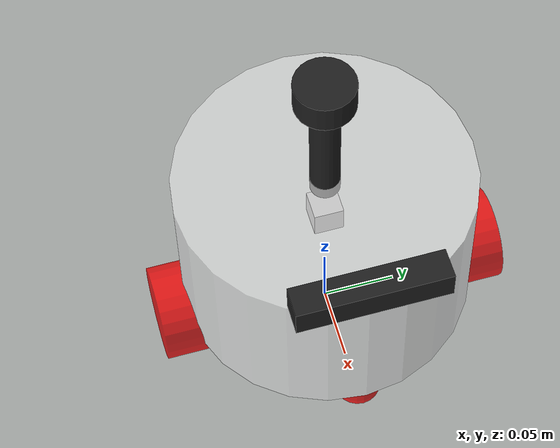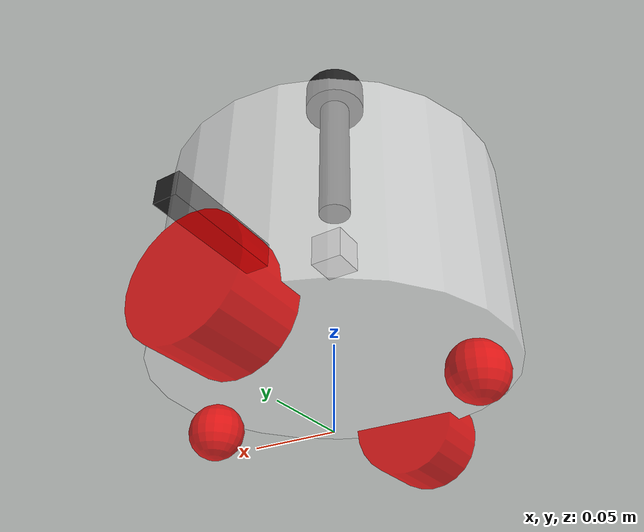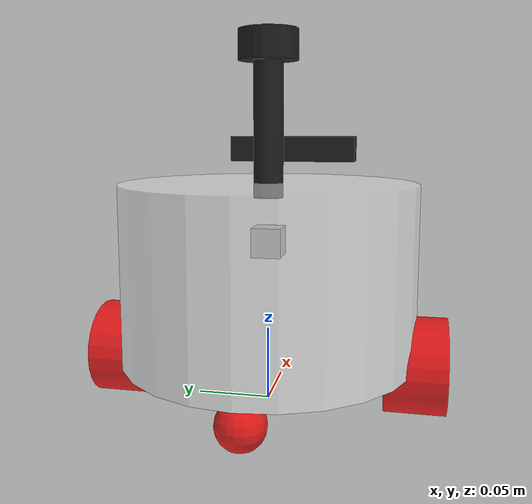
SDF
<sdf version='1.11'>
  <model name='robot_presatation'>
    <link name='base_footprint'>
      <inertial>
        <pose>0.0072992700729927031 0 0.10618248175182481 0 0 0</pose>
        <mass>1.3700000000000001</mass>
        <inertia>
          <ixx>0.0075142943795620384</ixx>
          <ixy>0</ixy>
          <ixz>-0.00064817518248175146</ixz>
          <iyy>0.0090013016788321135</iyy>
          <iyz>0</iyz>
          <izz>0.006687747299270074</izz>
        </inertia>
      </inertial>
      <collision name='base_footprint_fixed_joint_lump__base_link_collision'>
        <pose>0 0 0.090999999999999998 0 0 0</pose>
        <geometry>
          <cylinder>
            <length>0.12</length>
            <radius>0.10000000000000001</radius>
          </cylinder>
        </geometry>
      </collision>
      <collision name='base_footprint_fixed_joint_lump__back_caster_link_collision_1'>
        <pose>-0.080000000000000002 0 0.014999999999999999 0 0 0</pose>
        <geometry>
          <sphere>
            <radius>0.016</radius>
          </sphere>
        </geometry>
        <surface>
          <contact>
            <ode>
              <kp>1000000000</kp>
              <kd>1</kd>
            </ode>
          </contact>
          <friction>
            <ode>
              <mu>0</mu>
              <mu2>0</mu2>
            </ode>
          </friction>
        </surface>
      </collision>
      <collision name='base_footprint_fixed_joint_lump__camera_link_collision_2'>
        <pose>0.10000000000000001 0 0.17100000000000001 0 0 0</pose>
        <geometry>
          <box>
            <size>0.02 0.10000000000000001 0.02</size>
          </box>
        </geometry>
        <surface>
          <contact>
            <ode/>
          </contact>
          <friction>
            <ode/>
          </friction>
        </surface>
      </collision>
      <collision name='base_footprint_fixed_joint_lump__front_caster_link_collision_3'>
        <pose>0.080000000000000002 0 0.014999999999999999 0 0 0</pose>
        <geometry>
          <sphere>
            <radius>0.016</radius>
          </sphere>
        </geometry>
        <surface>
          <contact>
            <ode>
              <kp>1000000000</kp>
              <kd>1</kd>
            </ode>
          </contact>
          <friction>
            <ode>
              <mu>0</mu>
              <mu2>0</mu2>
            </ode>
          </friction>
        </surface>
      </collision>
      <collision name='base_footprint_fixed_joint_lump__imu_link_collision_4'>
        <pose>0 0 0.111 0 0 0</pose>
        <geometry>
          <box>
            <size>0.02 0.02 0.02</size>
          </box>
        </geometry>
        <surface>
          <contact>
            <ode/>
          </contact>
          <friction>
            <ode/>
          </friction>
        </surface>
      </collision>
      <collision name='base_footprint_fixed_joint_lump__laser_cylinder_link_collision_5'>
        <pose>0 0 0.191 0 0 0</pose>
        <geometry>
          <cylinder>
            <length>0.10000000000000001</length>
            <radius>0.01</radius>
          </cylinder>
        </geometry>
        <surface>
          <contact>
            <ode/>
          </contact>
          <friction>
            <ode/>
          </friction>
        </surface>
      </collision>
      <collision name='base_footprint_fixed_joint_lump__laser_link_collision_6'>
        <pose>0 0 0.24099999999999999 0 0 0</pose>
        <geometry>
          <cylinder>
            <length>0.02</length>
            <radius>0.02</radius>
          </cylinder>
        </geometry>
        <surface>
          <contact>
            <ode/>
          </contact>
          <friction>
            <ode/>
          </friction>
        </surface>
      </collision>
      <visual name='base_footprint_fixed_joint_lump__base_link_visual'>
        <pose>0 0 0.090999999999999998 0 0 0</pose>
        <geometry>
          <cylinder>
            <length>0.12</length>
            <radius>0.10000000000000001</radius>
          </cylinder>
        </geometry>
        <material>
          <diffuse>1 1 1 0.5</diffuse>
          <ambient>1 1 1 0.5</ambient>
        </material>
      </visual>
      <visual name='base_footprint_fixed_joint_lump__back_caster_link_visual_1'>
        <pose>-0.080000000000000002 0 0.014999999999999999 0 0 0</pose>
        <geometry>
          <sphere>
            <radius>0.016</radius>
          </sphere>
        </geometry>
        <material>
          <diffuse>1 0 0 0.800000012</diffuse>
          <ambient>1 0 0 0.800000012</ambient>
        </material>
      </visual>
      <visual name='base_footprint_fixed_joint_lump__camera_link_visual_2'>
        <pose>0.10000000000000001 0 0.17100000000000001 0 0 0</pose>
        <geometry>
          <box>
            <size>0.02 0.10000000000000001 0.02</size>
          </box>
        </geometry>
        <material>
          <script>
            <name>Gazebo/Black</name>
            <uri>file://media/materials/scripts/gazebo.material</uri>
          </script>
          <diffuse>0 0 0 0.5</diffuse>
          <ambient>0 0 0 0.5</ambient>
        </material>
      </visual>
      <visual name='base_footprint_fixed_joint_lump__front_caster_link_visual_3'>
        <pose>0.080000000000000002 0 0.014999999999999999 0 0 0</pose>
        <geometry>
          <sphere>
            <radius>0.016</radius>
          </sphere>
        </geometry>
        <material>
          <diffuse>1 0 0 0.800000012</diffuse>
          <ambient>1 0 0 0.800000012</ambient>
        </material>
      </visual>
      <visual name='base_footprint_fixed_joint_lump__imu_link_visual_4'>
        <pose>0 0 0.111 0 0 0</pose>
        <geometry>
          <box>
            <size>0.02 0.02 0.02</size>
          </box>
        </geometry>
        <material>
          <script>
            <name>Gazebo/Grey</name>
            <uri>file://media/materials/scripts/gazebo.material</uri>
          </script>
          <diffuse>0.37500003 0.37500003 0.37500003 1</diffuse>
          <ambient>0.37500003 0.37500003 0.37500003 1</ambient>
        </material>
      </visual>
      <visual name='base_footprint_fixed_joint_lump__laser_cylinder_link_visual_5'>
        <pose>0 0 0.191 0 0 0</pose>
        <geometry>
          <cylinder>
            <length>0.10000000000000001</length>
            <radius>0.01</radius>
          </cylinder>
        </geometry>
        <material>
          <script>
            <name>Gazebo/Black</name>
            <uri>file://media/materials/scripts/gazebo.material</uri>
          </script>
          <diffuse>0 0 0 0.5</diffuse>
          <ambient>0 0 0 0.5</ambient>
        </material>
      </visual>
      <visual name='base_footprint_fixed_joint_lump__laser_link_visual_6'>
        <pose>0 0 0.24099999999999999 0 0 0</pose>
        <geometry>
          <cylinder>
            <length>0.02</length>
            <radius>0.02</radius>
          </cylinder>
        </geometry>
        <material>
          <script>
            <name>Gazebo/Black</name>
            <uri>file://media/materials/scripts/gazebo.material</uri>
          </script>
          <diffuse>0 0 0 0.5</diffuse>
          <ambient>0 0 0 0.5</ambient>
        </material>
      </visual>
      <sensor name='laser_sensor' type='gpu_lidar'>
        <topic>/scan</topic>
        <always_on>true</always_on>
        <update_rate>10</update_rate>
        <visualize>true</visualize>
        <lidar>
          <scan>
            <horizontal>
              <samples>640</samples>
              <resolution>1</resolution>
              <min_angle>0</min_angle>
              <max_angle>6.2800000000000002</max_angle>
            </horizontal>
            <vertical>
              <samples>1</samples>
              <resolution>0.01</resolution>
              <min_angle>0</min_angle>
              <max_angle>0</max_angle>
            </vertical>
          </scan>
          <range>
            <min>0.080000000000000002</min>
            <max>10</max>
            <resolution>0.01</resolution>
          </range>
        </lidar>
        <pose>0 0 0.24099999999999999 0 0 0</pose>
      </sensor>
    </link>
    <joint name='left_wheel_joint' type='revolute'>
      <pose relative_to='base_footprint'>0 0.10000000000000001 0.031 0 0 0</pose>
      <parent>base_footprint</parent>
      <child>left_wheel_link</child>
      <axis>
        <xyz>0 1 0</xyz>
        <limit>
          <lower>-inf</lower>
          <upper>inf</upper>
        </limit>
        <dynamics>
          <spring_reference>0</spring_reference>
          <spring_stiffness>0</spring_stiffness>
        </dynamics>
      </axis>
    </joint>
    <link name='left_wheel_link'>
      <pose relative_to='left_wheel_joint'>0 0 0 0 0 0</pose>
      <inertial>
        <pose>0 0 0 0 0 0</pose>
        <mass>0.050000000000000003</mass>
        <inertia>
          <ixx>1.9466666666666671e-05</ixx>
          <ixy>0</ixy>
          <ixz>0</ixz>
          <iyy>1.9466666666666671e-05</iyy>
          <iyz>0</iyz>
          <izz>2.5599999999999999e-05</izz>
        </inertia>
      </inertial>
      <collision name='left_wheel_link_collision'>
        <pose>0 0 0 1.5707899999999999 0 0</pose>
        <geometry>
          <cylinder>
            <length>0.040000000000000001</length>
            <radius>0.032000000000000001</radius>
          </cylinder>
        </geometry>
        <surface>
          <contact>
            <ode>
              <kp>1000000000</kp>
              <kd>1</kd>
            </ode>
          </contact>
          <friction>
            <ode>
              <mu>20</mu>
              <mu2>20</mu2>
            </ode>
          </friction>
        </surface>
      </collision>
      <visual name='left_wheel_link_visual'>
        <pose>0 0 0 1.5707899999999999 0 0</pose>
        <geometry>
          <cylinder>
            <length>0.040000000000000001</length>
            <radius>0.032000000000000001</radius>
          </cylinder>
        </geometry>
        <material>
          <diffuse>1 0 0 0.800000012</diffuse>
          <ambient>1 0 0 0.800000012</ambient>
        </material>
      </visual>
    </link>
    <joint name='right_wheel_joint' type='revolute'>
      <pose relative_to='base_footprint'>0 -0.10000000000000001 0.031 0 0 0</pose>
      <parent>base_footprint</parent>
      <child>right_wheel_link</child>
      <axis>
        <xyz>0 1 0</xyz>
        <limit>
          <lower>-inf</lower>
          <upper>inf</upper>
        </limit>
        <dynamics>
          <spring_reference>0</spring_reference>
          <spring_stiffness>0</spring_stiffness>
        </dynamics>
      </axis>
    </joint>
    <link name='right_wheel_link'>
      <pose relative_to='right_wheel_joint'>0 0 0 0 0 0</pose>
      <inertial>
        <pose>0 0 0 0 0 0</pose>
        <mass>0.050000000000000003</mass>
        <inertia>
          <ixx>1.9466666666666671e-05</ixx>
          <ixy>0</ixy>
          <ixz>0</ixz>
          <iyy>1.9466666666666671e-05</iyy>
          <iyz>0</iyz>
          <izz>2.5599999999999999e-05</izz>
        </inertia>
      </inertial>
      <collision name='right_wheel_link_collision'>
        <pose>0 0 0 1.5707899999999999 0 0</pose>
        <geometry>
          <cylinder>
            <length>0.040000000000000001</length>
            <radius>0.032000000000000001</radius>
          </cylinder>
        </geometry>
        <surface>
          <contact>
            <ode>
              <kp>1000000000</kp>
              <kd>1</kd>
            </ode>
          </contact>
          <friction>
            <ode>
              <mu>20</mu>
              <mu2>20</mu2>
            </ode>
          </friction>
        </surface>
      </collision>
      <visual name='right_wheel_link_visual'>
        <pose>0 0 0 1.5707899999999999 0 0</pose>
        <geometry>
          <cylinder>
            <length>0.040000000000000001</length>
            <radius>0.032000000000000001</radius>
          </cylinder>
        </geometry>
        <material>
          <diffuse>1 0 0 0.800000012</diffuse>
          <ambient>1 0 0 0.800000012</ambient>
        </material>
      </visual>
    </link>
    <plugin name='gz_ros2_control::GazeboSimROS2ControlPlugin' filename='libgz_ros2_control-system.so'>
      <parameters>/home/nenlian/checkout/robot_private/colcon_ws/install/robot_description/share/robot_description/config/robot_ros2_controller.yaml</parameters>
    </plugin>
    <frame name='back_caster_joint' attached_to='base_link'>
      <pose>-0.080000000000000002 0 -0.075999999999999998 0 0 0</pose>
    </frame>
    <frame name='back_caster_link' attached_to='back_caster_joint'>
      <pose>0 0 0 0 0 0</pose>
    </frame>
    <frame name='camera_joint' attached_to='base_link'>
      <pose>0.10000000000000001 0 0.080000000000000002 0 0 0</pose>
    </frame>
    <frame name='camera_link' attached_to='camera_joint'>
      <pose>0 0 0 0 0 0</pose>
    </frame>
    <frame name='front_caster_joint' attached_to='base_link'>
      <pose>0.080000000000000002 0 -0.075999999999999998 0 0 0</pose>
    </frame>
    <frame name='front_caster_link' attached_to='front_caster_joint'>
      <pose>0 0 0 0 0 0</pose>
    </frame>
    <frame name='imu_joint' attached_to='base_link'>
      <pose>0 0 0.02 0 0 0</pose>
    </frame>
    <frame name='imu_link' attached_to='imu_joint'>
      <pose>0 0 0 0 0 0</pose>
    </frame>
    <frame name='laser_joint' attached_to='laser_cylinder_link'>
      <pose>0 0 0.050000000000000003 0 0 0</pose>
    </frame>
    <frame name='laser_link' attached_to='laser_joint'>
      <pose>0 0 0 0 0 0</pose>
    </frame>
    <frame name='laser_cylinder_joint' attached_to='base_link'>
      <pose>0 0 0.10000000000000001 0 0 0</pose>
    </frame>
    <frame name='laser_cylinder_link' attached_to='laser_cylinder_joint'>
      <pose>0 0 0 0 0 0</pose>
    </frame>
    <frame name='joint_name' attached_to='base_footprint'>
      <pose>0 0 0.090999999999999998 0 0 0</pose>
    </frame>
    <frame name='base_link' attached_to='joint_name'>
      <pose>0 0 0 0 0 0</pose>
    </frame>
  </model>
</sdf>
